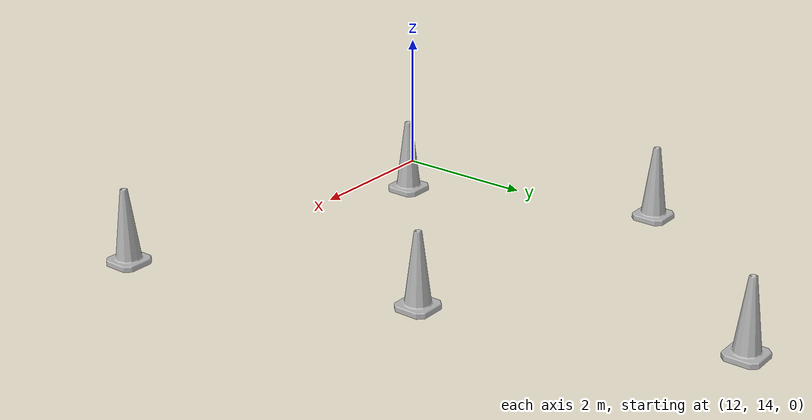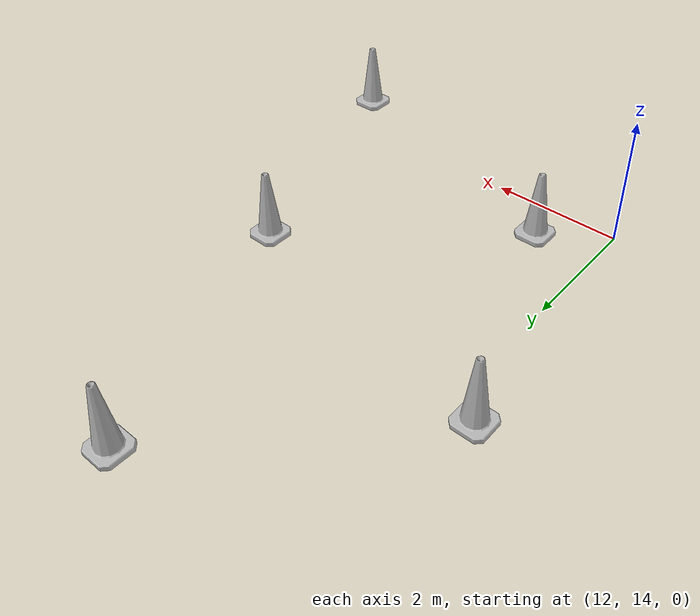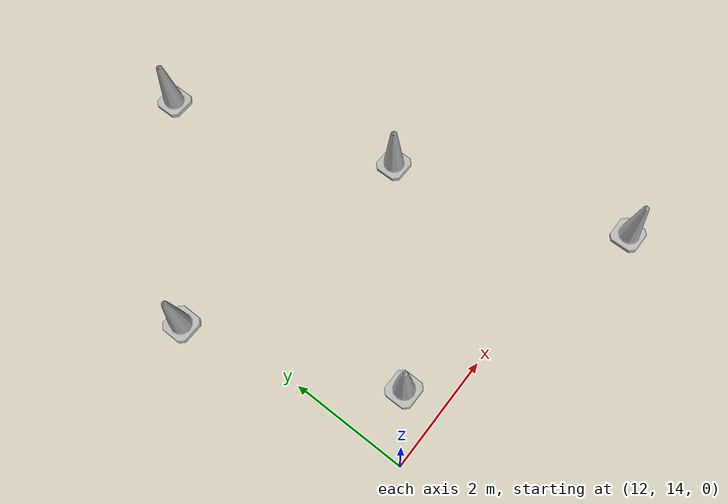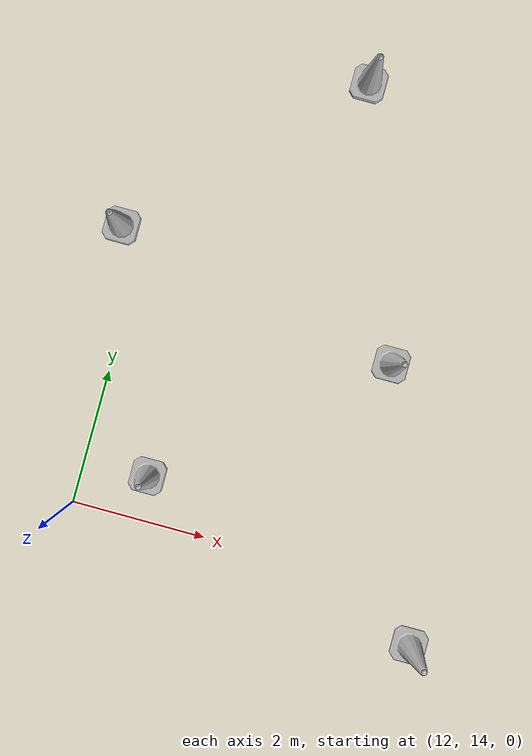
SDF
<sdf version="1.6">
 <model name="RaceTrack1">
  <link name="link_clone_16">
   <inertial>
    <inertia><ixx>1</ixx><ixy>0</ixy><ixz>0</ixz><iyy>1</iyy><iyz>0</iyz><izz>1</izz></inertia>
    <mass>1</mass>
   </inertial>
   <pose>11.6129 18.1211 -3e-06 0 1e-06 0</pose>
   <visual name="visual">
    <geometry>
     <mesh><scale>10 10 10</scale><uri>model://construction_cone/meshes/construction_cone.dae</uri></mesh>
    </geometry>
    <material><shader type="vertex"><normal_map>__default__</normal_map></shader></material>
   </visual>
   <collision name="collision">
    <geometry>
     <mesh><uri>model://construction_cone/meshes/construction_cone.dae</uri><scale>10 10 10</scale></mesh>
    </geometry>
    <surface>
     <friction>
      <ode><mu>1</mu><mu2>1</mu2><fdir1>0 0 0</fdir1><slip1>0</slip1><slip2>0</slip2></ode>
      <torsional>
       <coefficient>1</coefficient>
       <patch_radius>0</patch_radius>
       <surface_radius>0</surface_radius>
       <use_patch_radius>1</use_patch_radius>
       <ode><slip>0</slip></ode>
      </torsional>
     </friction>
     <bounce><restitution_coefficient>0</restitution_coefficient><threshold>1e+06</threshold></bounce>
     <contact>
      <collide_without_contact>0</collide_without_contact>
      <collide_without_contact_bitmask>1</collide_without_contact_bitmask>
      <collide_bitmask>1</collide_bitmask>
      <ode>
       <soft_cfm>0</soft_cfm>
       <soft_erp>0.2</soft_erp>
       <kp>1e+13</kp>
       <kd>1</kd>
       <max_vel>0.01</max_vel>
       <min_depth>0</min_depth>
      </ode>
      <bullet>
       <split_impulse>1</split_impulse>
       <split_impulse_penetration_threshold>-0.01</split_impulse_penetration_threshold>
       <soft_cfm>0</soft_cfm>
       <soft_erp>0.2</soft_erp>
       <kp>1e+13</kp>
       <kd>1</kd>
      </bullet>
     </contact>
    </surface>
   </collision>
  </link>
  <link name="link_clone_17">
   <inertial>
    <inertia><ixx>1</ixx><ixy>0</ixy><ixz>0</ixz><iyy>1</iyy><iyz>0</iyz><izz>1</izz></inertia>
    <mass>1</mass>
   </inertial>
   <pose>14.5734 21.098 -4e-06 0 1e-06 0</pose>
   <visual name="visual">
    <geometry>
     <mesh><scale>10 10 10</scale><uri>model://construction_cone/meshes/construction_cone.dae</uri></mesh>
    </geometry>
    <material><shader type="vertex"><normal_map>__default__</normal_map></shader></material>
   </visual>
   <collision name="collision">
    <geometry>
     <mesh><uri>model://construction_cone/meshes/construction_cone.dae</uri><scale>10 10 10</scale></mesh>
    </geometry>
    <surface>
     <friction>
      <ode><mu>1</mu><mu2>1</mu2><fdir1>0 0 0</fdir1><slip1>0</slip1><slip2>0</slip2></ode>
      <torsional>
       <coefficient>1</coefficient>
       <patch_radius>0</patch_radius>
       <surface_radius>0</surface_radius>
       <use_patch_radius>1</use_patch_radius>
       <ode><slip>0</slip></ode>
      </torsional>
     </friction>
     <bounce><restitution_coefficient>0</restitution_coefficient><threshold>1e+06</threshold></bounce>
     <contact>
      <collide_without_contact>0</collide_without_contact>
      <collide_without_contact_bitmask>1</collide_without_contact_bitmask>
      <collide_bitmask>1</collide_bitmask>
      <ode>
       <soft_cfm>0</soft_cfm>
       <soft_erp>0.2</soft_erp>
       <kp>1e+13</kp>
       <kd>1</kd>
       <max_vel>0.01</max_vel>
       <min_depth>0</min_depth>
      </ode>
      <bullet>
       <split_impulse>1</split_impulse>
       <split_impulse_penetration_threshold>-0.01</split_impulse_penetration_threshold>
       <soft_cfm>0</soft_cfm>
       <soft_erp>0.2</soft_erp>
       <kp>1e+13</kp>
       <kd>1</kd>
      </bullet>
     </contact>
    </surface>
   </collision>
  </link>
  <link name="link_clone_18">
   <inertial>
    <inertia><ixx>1</ixx><ixy>0</ixy><ixz>0</ixz><iyy>1</iyy><iyz>0</iyz><izz>1</izz></inertia>
    <mass>1</mass>
   </inertial>
   <pose>15.9824 17.1998 -6e-06 0 1e-06 0</pose>
   <visual name="visual">
    <geometry>
     <mesh><scale>10 10 10</scale><uri>model://construction_cone/meshes/construction_cone.dae</uri></mesh>
    </geometry>
    <material><shader type="vertex"><normal_map>__default__</normal_map></shader></material>
   </visual>
   <collision name="collision">
    <geometry>
     <mesh><uri>model://construction_cone/meshes/construction_cone.dae</uri><scale>10 10 10</scale></mesh>
    </geometry>
    <surface>
     <friction>
      <ode><mu>1</mu><mu2>1</mu2><fdir1>0 0 0</fdir1><slip1>0</slip1><slip2>0</slip2></ode>
      <torsional>
       <coefficient>1</coefficient>
       <patch_radius>0</patch_radius>
       <surface_radius>0</surface_radius>
       <use_patch_radius>1</use_patch_radius>
       <ode><slip>0</slip></ode>
      </torsional>
     </friction>
     <bounce><restitution_coefficient>0</restitution_coefficient><threshold>1e+06</threshold></bounce>
     <contact>
      <collide_without_contact>0</collide_without_contact>
      <collide_without_contact_bitmask>1</collide_without_contact_bitmask>
      <collide_bitmask>1</collide_bitmask>
      <ode>
       <soft_cfm>0</soft_cfm>
       <soft_erp>0.2</soft_erp>
       <kp>1e+13</kp>
       <kd>1</kd>
       <max_vel>0.01</max_vel>
       <min_depth>0</min_depth>
      </ode>
      <bullet>
       <split_impulse>1</split_impulse>
       <split_impulse_penetration_threshold>-0.01</split_impulse_penetration_threshold>
       <soft_cfm>0</soft_cfm>
       <soft_erp>0.2</soft_erp>
       <kp>1e+13</kp>
       <kd>1</kd>
      </bullet>
     </contact>
    </surface>
   </collision>
  </link>
  <link name="link_clone_19">
   <inertial>
    <inertia><ixx>1</ixx><ixy>0</ixy><ixz>0</ixz><iyy>1</iyy><iyz>0</iyz><izz>1</izz></inertia>
    <mass>1</mass>
   </inertial>
   <pose>12.9594 14.6631 -5e-06 0 1e-06 0</pose>
   <visual name="visual">
    <geometry>
     <mesh><scale>10 10 10</scale><uri>model://construction_cone/meshes/construction_cone.dae</uri></mesh>
    </geometry>
    <material><shader type="vertex"><normal_map>__default__</normal_map></shader></material>
   </visual>
   <collision name="collision">
    <geometry>
     <mesh><uri>model://construction_cone/meshes/construction_cone.dae</uri><scale>10 10 10</scale></mesh>
    </geometry>
    <surface>
     <friction>
      <ode><mu>1</mu><mu2>1</mu2><fdir1>0 0 0</fdir1><slip1>0</slip1><slip2>0</slip2></ode>
      <torsional>
       <coefficient>1</coefficient>
       <patch_radius>0</patch_radius>
       <surface_radius>0</surface_radius>
       <use_patch_radius>1</use_patch_radius>
       <ode><slip>0</slip></ode>
      </torsional>
     </friction>
     <bounce><restitution_coefficient>0</restitution_coefficient><threshold>1e+06</threshold></bounce>
     <contact>
      <collide_without_contact>0</collide_without_contact>
      <collide_without_contact_bitmask>1</collide_without_contact_bitmask>
      <collide_bitmask>1</collide_bitmask>
      <ode>
       <soft_cfm>0</soft_cfm>
       <soft_erp>0.2</soft_erp>
       <kp>1e+13</kp>
       <kd>1</kd>
       <max_vel>0.01</max_vel>
       <min_depth>0</min_depth>
      </ode>
      <bullet>
       <split_impulse>1</split_impulse>
       <split_impulse_penetration_threshold>-0.01</split_impulse_penetration_threshold>
       <soft_cfm>0</soft_cfm>
       <soft_erp>0.2</soft_erp>
       <kp>1e+13</kp>
       <kd>1</kd>
      </bullet>
     </contact>
    </surface>
   </collision>
  </link>
  <link name="link_clone_21">
   <inertial>
    <inertia><ixx>1</ixx><ixy>0</ixy><ixz>0</ixz><iyy>1</iyy><iyz>0</iyz><izz>1</izz></inertia>
    <mass>1</mass>
   </inertial>
   <pose>17.3302 13.273 -7e-06 0 1e-06 0</pose>
   <visual name="visual">
    <geometry>
     <mesh><scale>10 10 10</scale><uri>model://construction_cone/meshes/construction_cone.dae</uri></mesh>
    </geometry>
    <material><shader type="vertex"><normal_map>__default__</normal_map></shader></material>
   </visual>
   <collision name="collision">
    <geometry>
     <mesh><uri>model://construction_cone/meshes/construction_cone.dae</uri><scale>10 10 10</scale></mesh>
    </geometry>
    <surface>
     <friction>
      <ode><mu>1</mu><mu2>1</mu2><fdir1>0 0 0</fdir1><slip1>0</slip1><slip2>0</slip2></ode>
      <torsional>
       <coefficient>1</coefficient>
       <patch_radius>0</patch_radius>
       <surface_radius>0</surface_radius>
       <use_patch_radius>1</use_patch_radius>
       <ode><slip>0</slip></ode>
      </torsional>
     </friction>
     <bounce><restitution_coefficient>0</restitution_coefficient><threshold>1e+06</threshold></bounce>
     <contact>
      <collide_without_contact>0</collide_without_contact>
      <collide_without_contact_bitmask>1</collide_without_contact_bitmask>
      <collide_bitmask>1</collide_bitmask>
      <ode>
       <soft_cfm>0</soft_cfm>
       <soft_erp>0.2</soft_erp>
       <kp>1e+13</kp>
       <kd>1</kd>
       <max_vel>0.01</max_vel>
       <min_depth>0</min_depth>
      </ode>
      <bullet>
       <split_impulse>1</split_impulse>
       <split_impulse_penetration_threshold>-0.01</split_impulse_penetration_threshold>
       <soft_cfm>0</soft_cfm>
       <soft_erp>0.2</soft_erp>
       <kp>1e+13</kp>
       <kd>1</kd>
      </bullet>
     </contact>
    </surface>
   </collision>
  </link>
  <static>1</static>
 </model>
</sdf>
